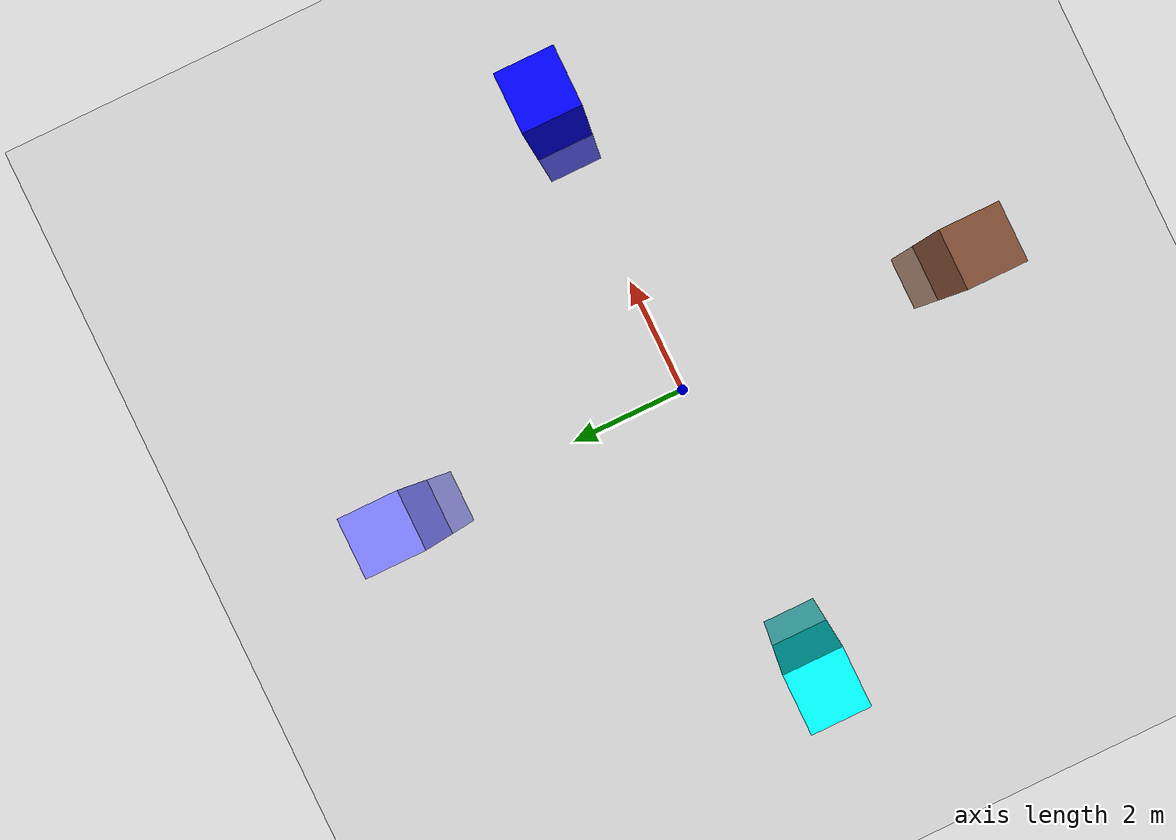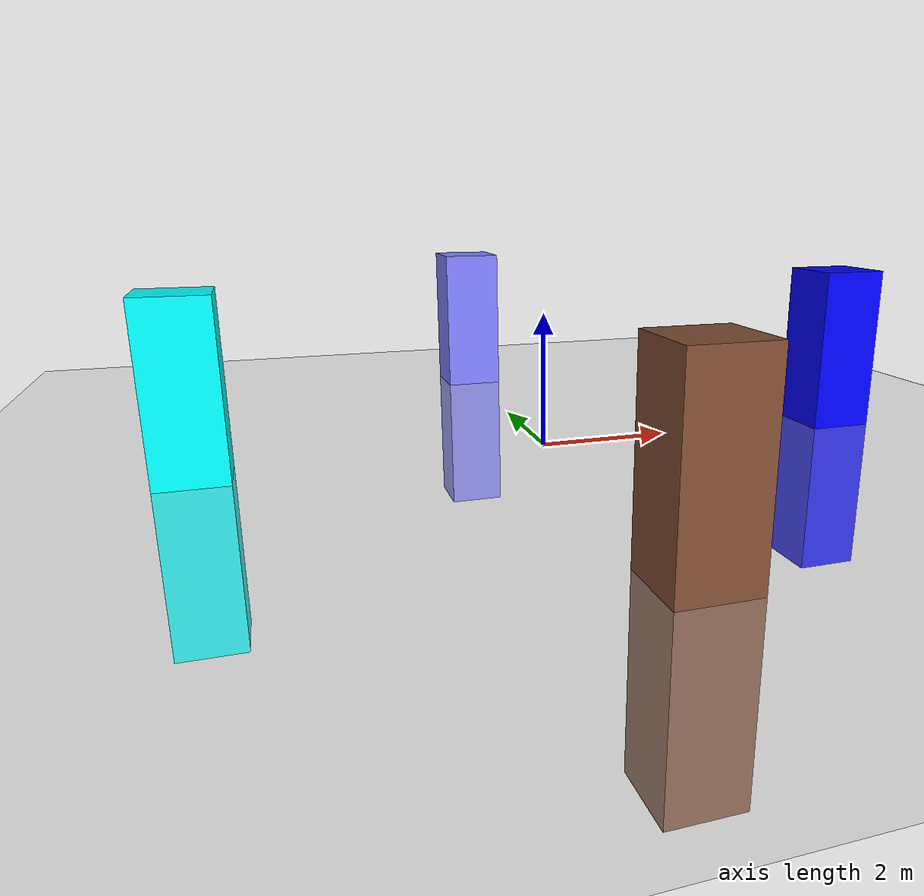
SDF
<sdf version="1.10">
 <world name="my_world">
  <physics name="1ms" type="ignored">
   <max_step_size>0.001</max_step_size>
   <real_time_factor>1.0</real_time_factor>
  </physics>
  <plugin filename="gz-sim-physics-system" name="gz::sim::systems::Physics"/>
  <plugin filename="gz-sim-user-commands-system" name="gz::sim::systems::UserCommands"/>
  <plugin filename="gz-sim-scene-broadcaster-system" name="gz::sim::systems::SceneBroadcaster"/>
  <plugin filename="gz-sim-sensors-system" name="gz::sim::systems::Sensors">
   <render_engine>ogre2</render_engine>
  </plugin>
  <plugin name="gz::sim::systems::Contact" filename="gz-sim-contact-system"/>
  <plugin name="gz::sim::systems::Imu" filename="gz-sim-imu-system"/>
  <plugin name="gz::sim::systems::AirPressure" filename="gz-sim-air-pressure-system"/>
  <plugin name="gz::sim::systems::ApplyLinkWrench" filename="gz-sim-apply-link-wrench-system"/>
  <plugin name="gz::sim::systems::NavSat" filename="gz-sim-navsat-system"/>
  <plugin filename="ImageDisplay" name="Image Display">
   <gz-gui>
    <property key="resizable" type="bool">false</property>
    <property key="width" type="double">5</property>
    <property key="height" type="double">5</property>
    <property key="state" type="string">floating</property>
    <property key="showTitleBar" type="bool">false</property>
   </gz-gui>
  </plugin>
  <light type="directional" name="sun">
   <pose>0 0 10 0 0 0</pose>
   <diffuse>0.8 0.8 0.8 1</diffuse>
   <specular>0.2 0.2 0.2 1</specular>
   <attenuation>
    <range>1000</range>
    <constant>0.9</constant>
    <linear>0.01</linear>
    <quadratic>0.001</quadratic>
   </attenuation>
   <direction>-0.5 0.1 -0.9</direction>
  </light>
  <model name="ground_plane">
   <static>true</static>
   <link name="link">
    <collision name="collision"><geometry><plane><normal>0 0 1</normal></plane></geometry></collision>
    <visual name="visual">
     <geometry><plane><normal>0 0 1</normal><size>100 100</size></plane></geometry>
     <material>
      <ambient>0.8 0.8 0.8 1</ambient>
      <diffuse>0.8 0.8 0.8 1</diffuse>
      <specular>0.8 0.8 0.8 1</specular>
     </material>
    </visual>
   </link>
  </model>
  <model name="box1">
   <static>true</static>
   <pose>5 0 0 0 0 0</pose>
   <link name="box">
    <visual name="visual">
     <geometry><box><size>1.0 1.0 5.0</size></box></geometry>
     <material>
      <ambient>0.0 0.0 1.0 1</ambient>
      <diffuse>0.0 0.0 1.0 1</diffuse>
      <specular>0.0 0.0 1.0 1</specular>
     </material>
    </visual>
    <collision name="collision"><geometry><box><size>1.0 1.0 5.0</size></box></geometry></collision>
   </link>
  </model>
  <model name="box2">
   <static>true</static>
   <pose>-5 0 0 0 0 0</pose>
   <link name="box">
    <visual name="visual">
     <geometry><box><size>1.0 1.0 5.0</size></box></geometry>
     <material>
      <ambient>0.0 0.0 1.0 1</ambient>
      <diffuse>0.0 1.0 1.0 1</diffuse>
      <specular>0.0 0.0 1.0 1</specular>
     </material>
    </visual>
    <collision name="collision"><geometry><box><size>1.0 1.0 5.0</size></box></geometry></collision>
   </link>
  </model>
  <model name="box3">
   <static>true</static>
   <pose>0 5 0 0 0 0</pose>
   <link name="box">
    <visual name="visual">
     <geometry><box><size>1.0 1.0 5.0</size></box></geometry>
     <material>
      <ambient>0.0 0.0 1.0 1</ambient>
      <diffuse>0.5 0.5 1.0 1</diffuse>
      <specular>0.0 0.0 1.0 1</specular>
     </material>
    </visual>
    <collision name="collision"><geometry><box><size>1.0 1.0 5.0</size></box></geometry></collision>
   </link>
  </model>
  <model name="box4">
   <static>true</static>
   <pose>0 -5 0 0 0 0</pose>
   <link name="box">
    <visual name="visual">
     <geometry><box><size>1.0 1.0 5.0</size></box></geometry>
     <material>
      <ambient>0.0 0.0 1.0 1</ambient>
      <diffuse>0.5 0.3 0.2 1</diffuse>
      <specular>0.0 0.0 1.0 1</specular>
     </material>
    </visual>
    <collision name="collision"><geometry><box><size>1.0 1.0 5.0</size></box></geometry></collision>
   </link>
  </model>
 </world>
</sdf>
